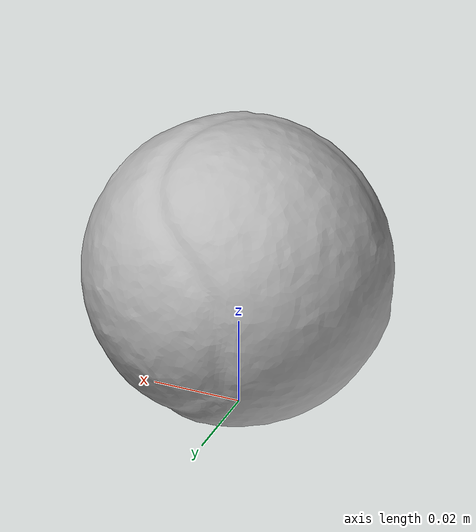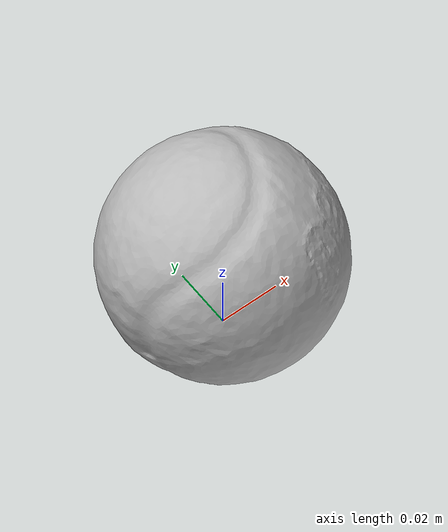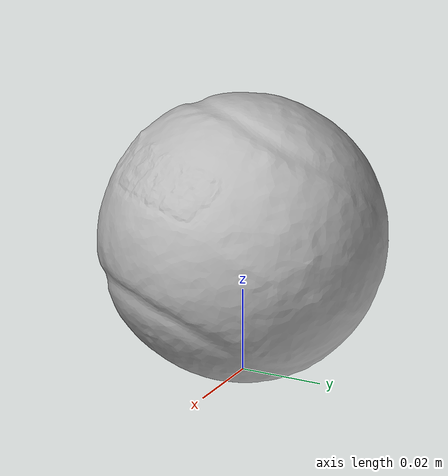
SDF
<?xml version="1.0" ?>
<sdf version='1.8'>
  <model name='ycb_056_tennis_ball'>
    <link name='body'>
      <inertial>
        <mass>0.058</mass>
        <pose>-5.76026374e-06 0.000107573618 0.0328746205 0 0 0</pose>
        <inertia>
          <ixx>2.58584279109e-05</ixx>
          <ixy>1.89792860915e-10</ixy>
          <ixz>-5.62637608871e-08</ixz>
          <iyy>2.58462737538e-05</iyy>
          <iyz>-2.61472881057e-08</iyz>
          <izz>2.59187047722e-05</izz>
        </inertia>
      </inertial>
      <visual name='ycb_056_tennis_ball_visual'>
        <pose>-0.008239 0.0443 -1.2e-05 0 0 0</pose>
        <geometry>
          <mesh>
            <uri>model://ycb_056_tennis_ball/meshes/textured.dae</uri>
          </mesh>
        </geometry>
      </visual>
      <collision name='ycb_056_tennis_ball_collision'>
        <pose>-0.008239 0.0443 -1.2e-05 0 0 0</pose>
        <geometry>
          <mesh>
            <uri>model://ycb_056_tennis_ball/meshes/nontextured.stl</uri>
          </mesh>
        </geometry>
        <max_contacts>10</max_contacts>
        <surface>
          <contact>
            <ode>
              <kp>1e15</kp>
              <kd>1e13</kd>
            </ode>
          </contact>
        </surface>
      </collision>
    </link>
  </model>
</sdf>
